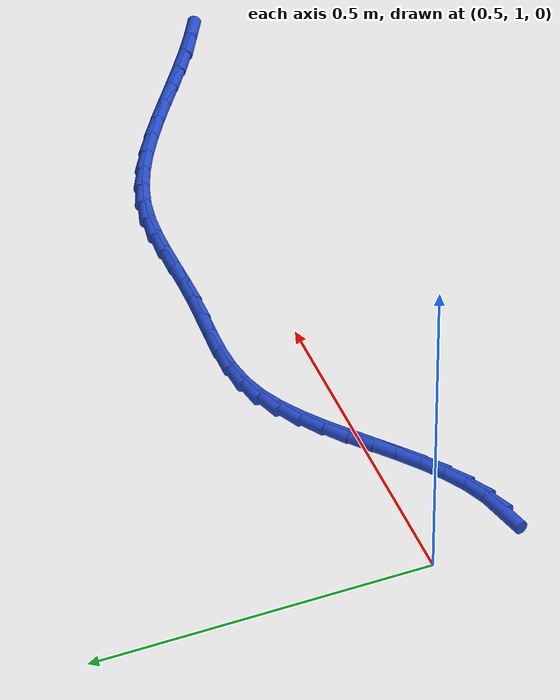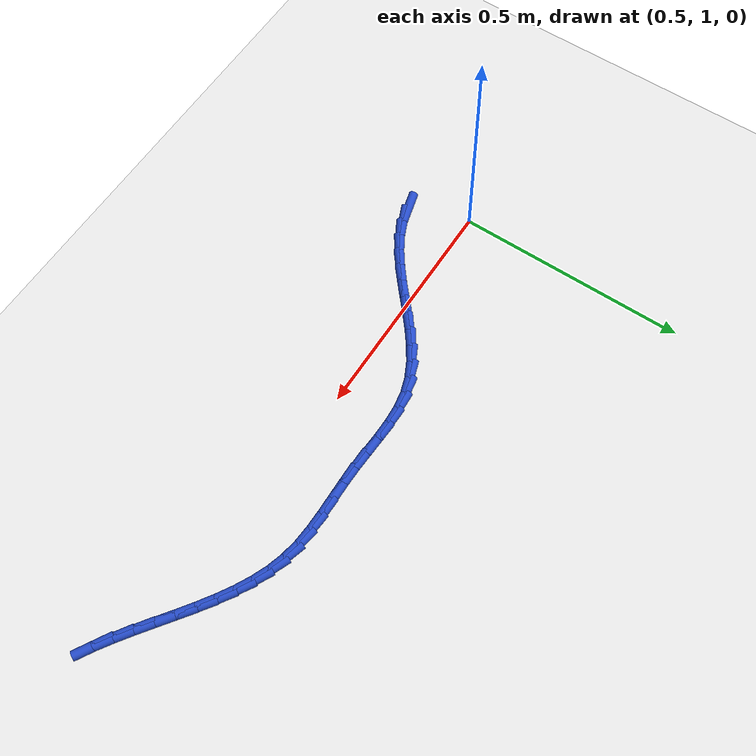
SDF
<sdf version="1.6">
 <world name="default">
  <model name="ground_plane">
   <static>1</static>
   <link name="link">
    <collision name="collision">
     <geometry><plane><normal>0 0 1</normal><size>100 100</size></plane></geometry>
     <surface><friction><ode><mu>100</mu><mu2>50</mu2></ode></friction></surface>
    </collision>
    <visual name="visual">
     <cast_shadows>0</cast_shadows>
     <geometry><plane><normal>0 0 1</normal><size>100 100</size></plane></geometry>
     <material>
      <script><uri>file://media/materials/scripts/gazebo.material</uri><name>Gazebo/WhiteGlow</name></script>
     </material>
    </visual>
   </link>
  </model>
  <model name="line">
   <link name="link_33">
    <pose>0.550686966168279 0.8747879999423103 0.01 0 1.57 0.2656169951487791</pose>
    <collision name="collision">
     <geometry><cylinder><radius>0.01</radius><length>0.08</length></cylinder></geometry>
    </collision>
    <visual name="visual">
     <material>
      <script><name>Gazebo/Blue</name><uri>file://media/materials/scripts/gazebo.material</uri></script>
     </material>
     <geometry><cylinder><radius>0.01</radius><length>0.08</length></cylinder></geometry>
    </visual>
   </link>
   <link name="link_34">
    <pose>0.5850537825099087 0.8841373239774409 0.01 0 1.57 0.4185360274429377</pose>
    <collision name="collision">
     <geometry><cylinder><radius>0.01</radius><length>0.08</length></cylinder></geometry>
    </collision>
    <visual name="visual">
     <material>
      <script><name>Gazebo/Blue</name><uri>file://media/materials/scripts/gazebo.material</uri></script>
     </material>
     <geometry><cylinder><radius>0.01</radius><length>0.08</length></cylinder></geometry>
    </visual>
   </link>
   <link name="link_35">
    <pose>0.6177116788272122 0.8986641363937734 0.01 0 1.57 0.5391866174887862</pose>
    <collision name="collision">
     <geometry><cylinder><radius>0.01</radius><length>0.08</length></cylinder></geometry>
    </collision>
    <visual name="visual">
     <material>
      <script><name>Gazebo/Blue</name><uri>file://media/materials/scripts/gazebo.material</uri></script>
     </material>
     <geometry><cylinder><radius>0.01</radius><length>0.08</length></cylinder></geometry>
    </visual>
   </link>
   <link name="link_36">
    <pose>0.6489755205719054 0.9173700594356077 0.01 0 1.57 0.6273686181092974</pose>
    <collision name="collision">
     <geometry><cylinder><radius>0.01</radius><length>0.08</length></cylinder></geometry>
    </collision>
    <visual name="visual">
     <material>
      <script><name>Gazebo/Blue</name><uri>file://media/materials/scripts/gazebo.material</uri></script>
     </material>
     <geometry><cylinder><radius>0.01</radius><length>0.08</length></cylinder></geometry>
    </visual>
   </link>
   <link name="link_37">
    <pose>0.6791601731957047 0.9392567153472446 0.01 0 1.57 0.6856853840362732</pose>
    <collision name="collision">
     <geometry><cylinder><radius>0.01</radius><length>0.08</length></cylinder></geometry>
    </collision>
    <visual name="visual">
     <material>
      <script><name>Gazebo/Blue</name><uri>file://media/materials/scripts/gazebo.material</uri></script>
     </material>
     <geometry><cylinder><radius>0.01</radius><length>0.08</length></cylinder></geometry>
    </visual>
   </link>
   <link name="link_38">
    <pose>0.7085805021503251 0.9633257263729841 0.01 0 1.57 0.7169398758496753</pose>
    <collision name="collision">
     <geometry><cylinder><radius>0.01</radius><length>0.08</length></cylinder></geometry>
    </collision>
    <visual name="visual">
     <material>
      <script><name>Gazebo/Blue</name><uri>file://media/materials/scripts/gazebo.material</uri></script>
     </material>
     <geometry><cylinder><radius>0.01</radius><length>0.08</length></cylinder></geometry>
    </visual>
   </link>
   <link name="link_39">
    <pose>0.7375513728874832 0.988578714757127 0.01 0 1.57 0.722878212950674</pose>
    <collision name="collision">
     <geometry><cylinder><radius>0.01</radius><length>0.08</length></cylinder></geometry>
    </collision>
    <visual name="visual">
     <material>
      <script><name>Gazebo/Blue</name><uri>file://media/materials/scripts/gazebo.material</uri></script>
     </material>
     <geometry><cylinder><radius>0.01</radius><length>0.08</length></cylinder></geometry>
    </visual>
   </link>
   <link name="link_40">
    <pose>0.766387650858894 1.0140173027439734 0.01 0 1.57 0.7037281107930893</pose>
    <collision name="collision">
     <geometry><cylinder><radius>0.01</radius><length>0.08</length></cylinder></geometry>
    </collision>
    <visual name="visual">
     <material>
      <script><name>Gazebo/Blue</name><uri>file://media/materials/scripts/gazebo.material</uri></script>
     </material>
     <geometry><cylinder><radius>0.01</radius><length>0.08</length></cylinder></geometry>
    </visual>
   </link>
   <link name="link_41">
    <pose>0.7954042015162741 1.038643112577824 0.01 0 1.57 0.6581042791591748</pose>
    <collision name="collision">
     <geometry><cylinder><radius>0.01</radius><length>0.08</length></cylinder></geometry>
    </collision>
    <visual name="visual">
     <material>
      <script><name>Gazebo/Blue</name><uri>file://media/materials/scripts/gazebo.material</uri></script>
     </material>
     <geometry><cylinder><radius>0.01</radius><length>0.08</length></cylinder></geometry>
    </visual>
   </link>
   <link name="link_42">
    <pose>0.8249158903113385 1.0614577665029783 0.01 0 1.57 0.5832076606168878</pose>
    <collision name="collision">
     <geometry><cylinder><radius>0.01</radius><length>0.08</length></cylinder></geometry>
    </collision>
    <visual name="visual">
     <material>
      <script><name>Gazebo/Blue</name><uri>file://media/materials/scripts/gazebo.material</uri></script>
     </material>
     <geometry><cylinder><radius>0.01</radius><length>0.08</length></cylinder></geometry>
    </visual>
   </link>
   <link name="link_43">
    <pose>0.8552375826958036 1.0814628867637375 0.01 0 1.57 0.47563151221520694</pose>
    <collision name="collision">
     <geometry><cylinder><radius>0.01</radius><length>0.08</length></cylinder></geometry>
    </collision>
    <visual name="visual">
     <material>
      <script><name>Gazebo/Blue</name><uri>file://media/materials/scripts/gazebo.material</uri></script>
     </material>
     <geometry><cylinder><radius>0.01</radius><length>0.08</length></cylinder></geometry>
    </visual>
   </link>
   <link name="link_44">
    <pose>0.8866841441213851 1.0976600956044016 0.01 0 1.57 0.3334770963094323</pose>
    <collision name="collision">
     <geometry><cylinder><radius>0.01</radius><length>0.08</length></cylinder></geometry>
    </collision>
    <visual name="visual">
     <material>
      <script><name>Gazebo/Blue</name><uri>file://media/materials/scripts/gazebo.material</uri></script>
     </material>
     <geometry><cylinder><radius>0.01</radius><length>0.08</length></cylinder></geometry>
    </visual>
   </link>
   <link name="link_45">
    <pose>0.919570093252505 1.1090522670865648 0.01 0 1.57 0.17741898869911157</pose>
    <collision name="collision">
     <geometry><cylinder><radius>0.01</radius><length>0.08</length></cylinder></geometry>
    </collision>
    <visual name="visual">
     <material>
      <script><name>Gazebo/Blue</name><uri>file://media/materials/scripts/gazebo.material</uri></script>
     </material>
     <geometry><cylinder><radius>0.01</radius><length>0.08</length></cylinder></geometry>
    </visual>
   </link>
   <link name="link_46">
    <pose>0.9540460382133769 1.1152339522230308 0.01 0 1.57 0.058628369075735126</pose>
    <collision name="collision">
     <geometry><cylinder><radius>0.01</radius><length>0.08</length></cylinder></geometry>
    </collision>
    <visual name="visual">
     <material>
      <script><name>Gazebo/Blue</name><uri>file://media/materials/scripts/gazebo.material</uri></script>
     </material>
     <geometry><cylinder><radius>0.01</radius><length>0.08</length></cylinder></geometry>
    </visual>
   </link>
   <link name="link_47">
    <pose>0.989837338553318 1.1173347453495102 0.01 0 1.57 -0.016449524241036087</pose>
    <collision name="collision">
     <geometry><cylinder><radius>0.01</radius><length>0.08</length></cylinder></geometry>
    </collision>
    <visual name="visual">
     <material>
      <script><name>Gazebo/Blue</name><uri>file://media/materials/scripts/gazebo.material</uri></script>
     </material>
     <geometry><cylinder><radius>0.01</radius><length>0.08</length></cylinder></geometry>
    </visual>
   </link>
   <link name="link_48">
    <pose>1.0266012881241353 1.1167299413181926 0.01 0 1.57 -0.05170314118292978</pose>
    <collision name="collision">
     <geometry><cylinder><radius>0.01</radius><length>0.08</length></cylinder></geometry>
    </collision>
    <visual name="visual">
     <material>
      <script><name>Gazebo/Blue</name><uri>file://media/materials/scripts/gazebo.material</uri></script>
     </material>
     <geometry><cylinder><radius>0.01</radius><length>0.08</length></cylinder></geometry>
    </visual>
   </link>
   <link name="link_49">
    <pose>1.0639951807776362 1.1147948349812677 0.01 0 1.57 -0.05011874539832529</pose>
    <collision name="collision">
     <geometry><cylinder><radius>0.01</radius><length>0.08</length></cylinder></geometry>
    </collision>
    <visual name="visual">
     <material>
      <script><name>Gazebo/Blue</name><uri>file://media/materials/scripts/gazebo.material</uri></script>
     </material>
     <geometry><cylinder><radius>0.01</radius><length>0.08</length></cylinder></geometry>
    </visual>
   </link>
   <link name="link_50">
    <pose>1.1016763103656264 1.1129047211909244 0.01 0 1.57 -0.015018872214611156</pose>
    <collision name="collision">
     <geometry><cylinder><radius>0.01</radius><length>0.08</length></cylinder></geometry>
    </collision>
    <visual name="visual">
     <material>
      <script><name>Gazebo/Blue</name><uri>file://media/materials/scripts/gazebo.material</uri></script>
     </material>
     <geometry><cylinder><radius>0.01</radius><length>0.08</length></cylinder></geometry>
    </visual>
   </link>
   <link name="link_51">
    <pose>1.1393094751861828 1.112339470996307 0.01 0 1.57 0.017598746608704093</pose>
    <collision name="collision">
     <geometry><cylinder><radius>0.01</radius><length>0.08</length></cylinder></geometry>
    </collision>
    <visual name="visual">
     <material>
      <script><name>Gazebo/Blue</name><uri>file://media/materials/scripts/gazebo.material</uri></script>
     </material>
     <geometry><cylinder><radius>0.01</radius><length>0.08</length></cylinder></geometry>
    </visual>
   </link>
   <link name="link_52">
    <pose>1.1766681547460989 1.1129970048158084 0.01 0 1.57 0.019959532412336663</pose>
    <collision name="collision">
     <geometry><cylinder><radius>0.01</radius><length>0.08</length></cylinder></geometry>
    </collision>
    <visual name="visual">
     <material>
      <script><name>Gazebo/Blue</name><uri>file://media/materials/scripts/gazebo.material</uri></script>
     </material>
     <geometry><cylinder><radius>0.01</radius><length>0.08</length></cylinder></geometry>
    </visual>
   </link>
   <link name="link_53">
    <pose>1.2136076840441103 1.1137343984724122 0.01 0 1.57 -0.009652594679860653</pose>
    <collision name="collision">
     <geometry><cylinder><radius>0.01</radius><length>0.08</length></cylinder></geometry>
    </collision>
    <visual name="visual">
     <material>
      <script><name>Gazebo/Blue</name><uri>file://media/materials/scripts/gazebo.material</uri></script>
     </material>
     <geometry><cylinder><radius>0.01</radius><length>0.08</length></cylinder></geometry>
    </visual>
   </link>
   <link name="link_54">
    <pose>1.2499854018787886 1.1133832482008486 0.01 0 1.57 -0.07298090989414706</pose>
    <collision name="collision">
     <geometry><cylinder><radius>0.01</radius><length>0.08</length></cylinder></geometry>
    </collision>
    <visual name="visual">
     <material>
      <script><name>Gazebo/Blue</name><uri>file://media/materials/scripts/gazebo.material</uri></script>
     </material>
     <geometry><cylinder><radius>0.01</radius><length>0.08</length></cylinder></geometry>
    </visual>
   </link>
   <link name="link_55">
    <pose>1.2856586470487057 1.1107751502358494 0.01 0 1.57 -0.17152839287614283</pose>
    <collision name="collision">
     <geometry><cylinder><radius>0.01</radius><length>0.08</length></cylinder></geometry>
    </collision>
    <visual name="visual">
     <material>
      <script><name>Gazebo/Blue</name><uri>file://media/materials/scripts/gazebo.material</uri></script>
     </material>
     <geometry><cylinder><radius>0.01</radius><length>0.08</length></cylinder></geometry>
    </visual>
   </link>
   <link name="link_56">
    <pose>1.3204848357874224 1.1047421864044682 0.01 0 1.57 -0.29247017391245833</pose>
    <collision name="collision">
     <geometry><cylinder><radius>0.01</radius><length>0.08</length></cylinder></geometry>
    </collision>
    <visual name="visual">
     <material>
      <script><name>Gazebo/Blue</name><uri>file://media/materials/scripts/gazebo.material</uri></script>
     </material>
     <geometry><cylinder><radius>0.01</radius><length>0.08</length></cylinder></geometry>
    </visual>
   </link>
   <link name="link_57">
    <pose>1.3543879381617003 1.09453379548062 0.01 0 1.57 -0.3990852005120483</pose>
    <collision name="collision">
     <geometry><cylinder><radius>0.01</radius><length>0.08</length></cylinder></geometry>
    </collision>
    <visual name="visual">
     <material>
      <script><name>Gazebo/Blue</name><uri>file://media/materials/scripts/gazebo.material</uri></script>
     </material>
     <geometry><cylinder><radius>0.01</radius><length>0.08</length></cylinder></geometry>
    </visual>
   </link>
   <link name="link_58">
    <pose>1.3874799302251335 1.0805783957332036 0.01 0 1.57 -0.4845035469702688</pose>
    <collision name="collision">
     <geometry><cylinder><radius>0.01</radius><length>0.08</length></cylinder></geometry>
    </collision>
    <visual name="visual">
     <material>
      <script><name>Gazebo/Blue</name><uri>file://media/materials/scripts/gazebo.material</uri></script>
     </material>
     <geometry><cylinder><radius>0.01</radius><length>0.08</length></cylinder></geometry>
    </visual>
   </link>
   <link name="link_59">
    <pose>1.419905750753244 1.063511113599853 0.01 0 1.57 -0.5496164934349463</pose>
    <collision name="collision">
     <geometry><cylinder><radius>0.01</radius><length>0.08</length></cylinder></geometry>
    </collision>
    <visual name="visual">
     <material>
      <script><name>Gazebo/Blue</name><uri>file://media/materials/scripts/gazebo.material</uri></script>
     </material>
     <geometry><cylinder><radius>0.01</radius><length>0.08</length></cylinder></geometry>
    </visual>
   </link>
   <link name="link_60">
    <pose>1.4518103385215522 1.0439670755182027 0.01 0 1.57 -0.5960138293594356</pose>
    <collision name="collision">
     <geometry><cylinder><radius>0.01</radius><length>0.08</length></cylinder></geometry>
    </collision>
    <visual name="visual">
     <material>
      <script><name>Gazebo/Blue</name><uri>file://media/materials/scripts/gazebo.material</uri></script>
     </material>
     <geometry><cylinder><radius>0.01</radius><length>0.08</length></cylinder></geometry>
    </visual>
   </link>
   <link name="link_61">
    <pose>1.483338632305579 1.0225814079258868 0.01 0 1.57 -0.6252503618484937</pose>
    <collision name="collision">
     <geometry><cylinder><radius>0.01</radius><length>0.08</length></cylinder></geometry>
    </collision>
    <visual name="visual">
     <material>
      <script><name>Gazebo/Blue</name><uri>file://media/materials/scripts/gazebo.material</uri></script>
     </material>
     <geometry><cylinder><radius>0.01</radius><length>0.08</length></cylinder></geometry>
    </visual>
   </link>
   <link name="link_62">
    <pose>1.5146355708808465 0.9999892372605405 0.01 0 1.57 -0.6384717502287445</pose>
    <collision name="collision">
     <geometry><cylinder><radius>0.01</radius><length>0.08</length></cylinder></geometry>
    </collision>
    <visual name="visual">
     <material>
      <script><name>Gazebo/Blue</name><uri>file://media/materials/scripts/gazebo.material</uri></script>
     </material>
     <geometry><cylinder><radius>0.01</radius><length>0.08</length></cylinder></geometry>
    </visual>
   </link>
   <link name="link_63">
    <pose>1.5458460930228746 0.976825689959798 0.01 0 1.57 -0.6362578177100335</pose>
    <collision name="collision">
     <geometry><cylinder><radius>0.01</radius><length>0.08</length></cylinder></geometry>
    </collision>
    <visual name="visual">
     <material>
      <script><name>Gazebo/Blue</name><uri>file://media/materials/scripts/gazebo.material</uri></script>
     </material>
     <geometry><cylinder><radius>0.01</radius><length>0.08</length></cylinder></geometry>
    </visual>
   </link>
   <link name="link_64">
    <pose>1.5771151375071846 0.9537258924612937 0.01 0 1.57 -0.6185761234872691</pose>
    <collision name="collision">
     <geometry><cylinder><radius>0.01</radius><length>0.08</length></cylinder></geometry>
    </collision>
    <visual name="visual">
     <material>
      <script><name>Gazebo/Blue</name><uri>file://media/materials/scripts/gazebo.material</uri></script>
     </material>
     <geometry><cylinder><radius>0.01</radius><length>0.08</length></cylinder></geometry>
    </visual>
   </link>
   <link name="link_65">
    <pose>1.6085876431092976 0.931324971202662 0.01 0 1.57 -0.5847971908737696</pose>
    <collision name="collision">
     <geometry><cylinder><radius>0.01</radius><length>0.08</length></cylinder></geometry>
    </collision>
    <visual name="visual">
     <material>
      <script><name>Gazebo/Blue</name><uri>file://media/materials/scripts/gazebo.material</uri></script>
     </material>
     <geometry><cylinder><radius>0.01</radius><length>0.08</length></cylinder></geometry>
    </visual>
   </link>
   <link name="link_66">
    <pose>1.6404085486047353 0.9102580526215378 0.01 0 1.57 -0.5337772024568379</pose>
    <collision name="collision">
     <geometry><cylinder><radius>0.01</radius><length>0.08</length></cylinder></geometry>
    </collision>
    <visual name="visual">
     <material>
      <script><name>Gazebo/Blue</name><uri>file://media/materials/scripts/gazebo.material</uri></script>
     </material>
     <geometry><cylinder><radius>0.01</radius><length>0.08</length></cylinder></geometry>
    </visual>
   </link>
  </model>
 </world>
</sdf>
